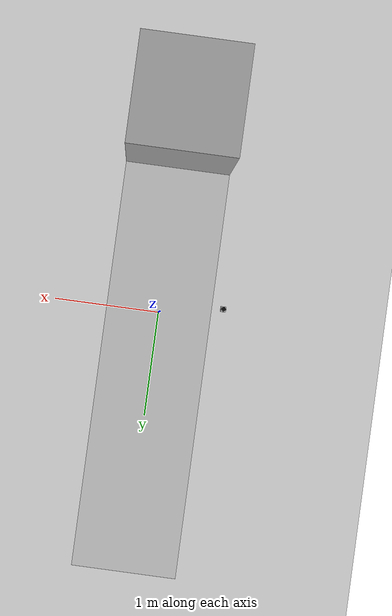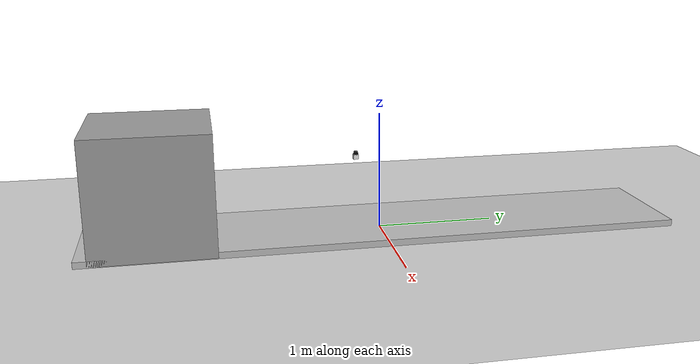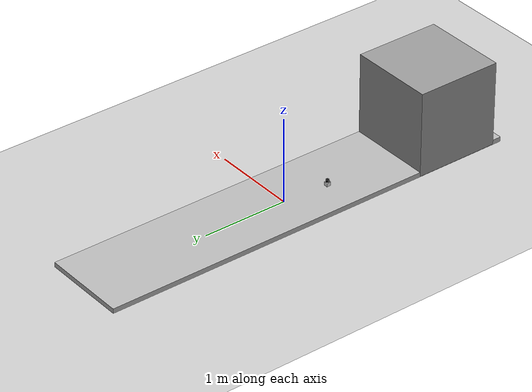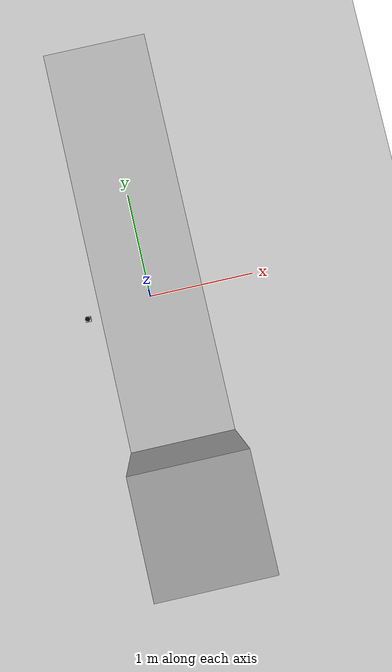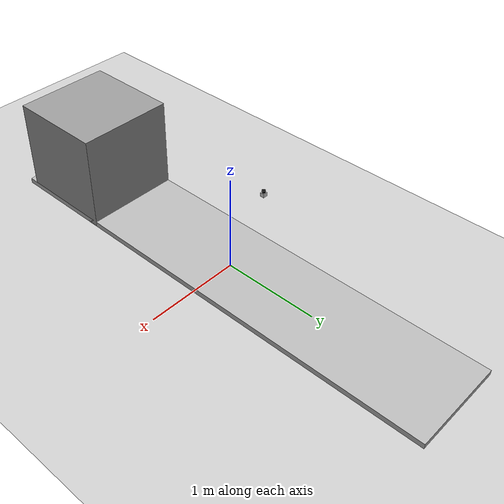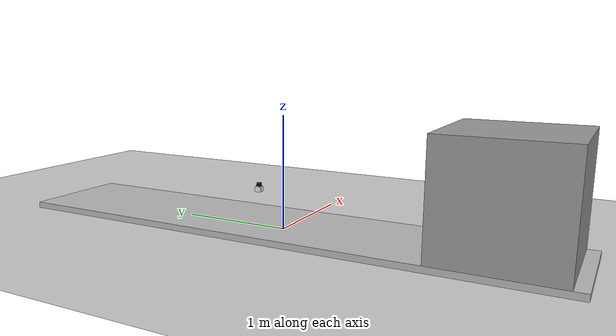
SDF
<sdf version='1.6'>
  <world name='default'>
    <plugin name="conveyor_controller" filename="libConveyorController.so"/>
    <include>
      <uri>model://break_beam</uri>
      <pose frame=''>-0.575983 -0.101408 0.5 0 -0 0</pose>
    </include>
    <include>
      <uri>model://conveyor_belt</uri>
    </include>
    <light name='sun' type='directional'>
      <cast_shadows>1</cast_shadows>
      <pose frame=''>0 0 10 0 -0 0</pose>
      <diffuse>0.8 0.8 0.8 1</diffuse>
      <specular>0.1 0.1 0.1 1</specular>
      <attenuation>
        <range>1000</range>
        <constant>0.9</constant>
        <linear>0.01</linear>
        <quadratic>0.001</quadratic>
      </attenuation>
      <direction>-0.5 0.5 -1</direction>
    </light>
    <model name='ground_plane'>
      <static>1</static>
      <link name='link'>
        <collision name='collision'>
          <geometry>
            <plane>
              <normal>0 0 1</normal>
              <size>100 100</size>
            </plane>
          </geometry>
          <surface>
            <friction>
              <ode>
                <mu>100</mu>
                <mu2>50</mu2>
              </ode>
              <torsional>
                <ode/>
              </torsional>
            </friction>
            <contact>
              <ode/>
            </contact>
            <bounce/>
          </surface>
          <max_contacts>10</max_contacts>
        </collision>
        <visual name='visual'>
          <cast_shadows>0</cast_shadows>
          <geometry>
            <plane>
              <normal>0 0 1</normal>
              <size>100 100</size>
            </plane>
          </geometry>
          <material>
            <script>
              <uri>file://media/materials/scripts/gazebo.material</uri>
              <name>Gazebo/Grey</name>
            </script>
          </material>
        </visual>
        <self_collide>0</self_collide>
        <kinematic>0</kinematic>
        <gravity>1</gravity>
      </link>
    </model>
    <gravity>0 0 -9.8</gravity>
    <magnetic_field>6e-06 2.3e-05 -4.2e-05</magnetic_field>
    <atmosphere type='adiabatic'/>
    <physics name='default_physics' default='0' type='ode'>
      <max_step_size>0.001</max_step_size>
      <real_time_factor>1</real_time_factor>
      <real_time_update_rate>1000</real_time_update_rate>
    </physics>
    <scene>
      <ambient>0.4 0.4 0.4 1</ambient>
      <background>0.7 0.7 0.7 1</background>
      <shadows>1</shadows>
    </scene>
    <spherical_coordinates>
      <surface_model>EARTH_WGS84</surface_model>
      <latitude_deg>0</latitude_deg>
      <longitude_deg>0</longitude_deg>
      <elevation>0</elevation>
      <heading_deg>0</heading_deg>
    </spherical_coordinates>
    <model name='unit_box'>
      <pose frame=''>0.0 -1.89638 0.5 0 -0 0</pose>
      <link name='link'>
        <inertial>
          <mass>1</mass>
          <inertia>
            <ixx>0.166667</ixx>
            <ixy>0</ixy>
            <ixz>0</ixz>
            <iyy>0.166667</iyy>
            <iyz>0</iyz>
            <izz>0.166667</izz>
          </inertia>
        </inertial>
        <collision name='collision'>
          <geometry>
            <box>
              <size>1 1 1</size>
            </box>
          </geometry>
          <max_contacts>10</max_contacts>
          <surface>
            <contact>
              <ode/>
            </contact>
            <bounce/>
            <friction>
              <torsional>
                <ode/>
              </torsional>
              <ode/>
            </friction>
          </surface>
        </collision>
        <visual name='visual'>
          <geometry>
            <box>
              <size>1 1 1</size>
            </box>
          </geometry>
          <material>
            <script>
              <name>Gazebo/Grey</name>
              <uri>file://media/materials/scripts/gazebo.material</uri>
            </script>
          </material>
        </visual>
        <self_collide>0</self_collide>
        <kinematic>0</kinematic>
        <gravity>1</gravity>
      </link>
    </model>
    <gui fullscreen='0'>
      <camera name='user_camera'>
        <pose frame=''>8.619 -4.77568 2.75822 0 -0.008357 2.62419</pose>
        <view_controller>orbit</view_controller>
        <projection_type>perspective</projection_type>
      </camera>
    </gui>
  </world>
</sdf>

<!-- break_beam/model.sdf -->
<sdf version="1.6">
  <model name="proximity_sick_wl9l-3">
    <link name="link">
      <sensor name="laser" type="ray">
        <plugin name="proximity_ray_plugin" filename="libProximityRayPlugin.so" >
          <output_state_topic>sensor_output</output_state_topic>
          <time_delay>0.0005</time_delay><!-- this modifies the update rate of the ray sensor -->
          <output_function>normally_closed</output_function> <!-- energized when target detected -->
        </plugin>
        <ray>
          <range>
            <min>0.0</min>
            <max>1.0</max> <!-- this represents the distance at which the reflector's placed. max 12m -->
            <resolution>0.001</resolution>
          </range>

          <!-- nothing below this line really needs to be modified upon change of sensor model -->

          <scan>
            <horizontal>
              <samples>1</samples>
              <resolution>1</resolution>
              <min_angle>0</min_angle>
              <max_angle>0</max_angle>
            </horizontal>
          </scan>
          <noise>
            <type>gaussian</type>
            <mean>0.0</mean>
            <stddev>0.01</stddev>
          </noise>
        </ray>

        <always_on>1</always_on>
        <visualize>true</visualize>
      </sensor>
      <gravity>false</gravity>
      <inertial>
        <mass>0.1</mass>
      </inertial>
      <visual name="visual">
        <geometry>
          <mesh>
            <uri>model://hokuyo/meshes/hokuyo.dae</uri>
          </mesh>
        </geometry>
      </visual>
    </link>
  </model>
</sdf>

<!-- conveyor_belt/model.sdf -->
<sdf version="1.6">
    <model name="conveyor_belt">
        <link name="belt">
            <sensor name='conveyor_belt_contact' type='contact'>
                <update_rate>10</update_rate>
                <contact>
                    <collision>belt_collision</collision>
                </contact>
                <plugin name="conveyor_belt_plugin" filename="libConveyorBeltPlugin.so">
                    <belt_speed>0.2</belt_speed>
                </plugin>
            </sensor>
            <inertial>
                <mass>10</mass>
                <inertia>
                    <ixx>20.841</ixx>
                    <ixy>0</ixy>
                    <ixz>0</ixz>
                    <iyy>0.8417</iyy>
                    <iyz>0</iyz>
                    <izz>21.66667</izz>
                </inertia>
            </inertial>
            <collision name="belt_collision">
            <geometry>
                <box>
                <size>1 5 0.1</size>
                </box>
            </geometry>
            <surface>
                <friction>
                    <ode>
                        <mu>0.1</mu>
                        <mu2>0.1</mu2>
                    </ode>
                </friction>
            </surface>
            </collision>
            <visual name="visual">
            <geometry>
                <box>
                <size>1 5 0.1</size>
                </box>
            </geometry>
            </visual>
        </link>
    </model>
</sdf>
